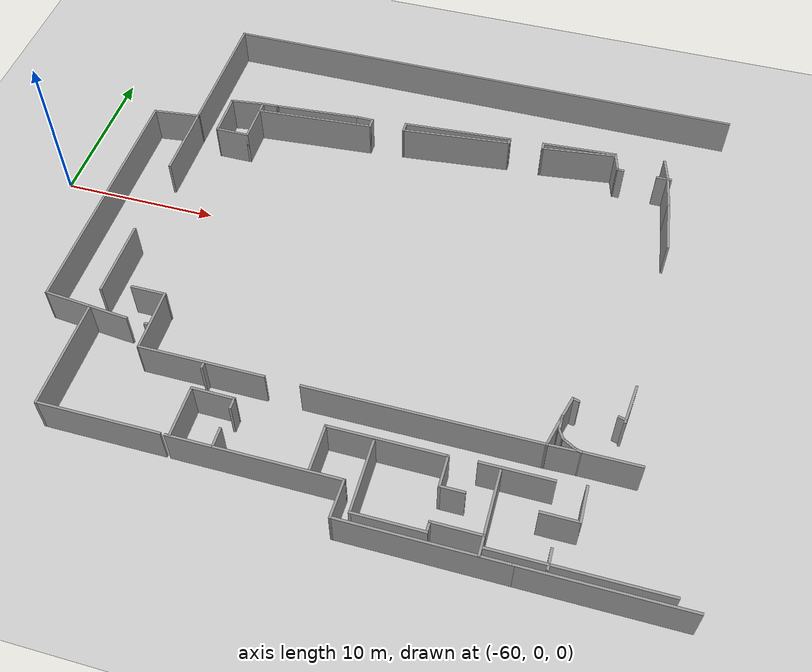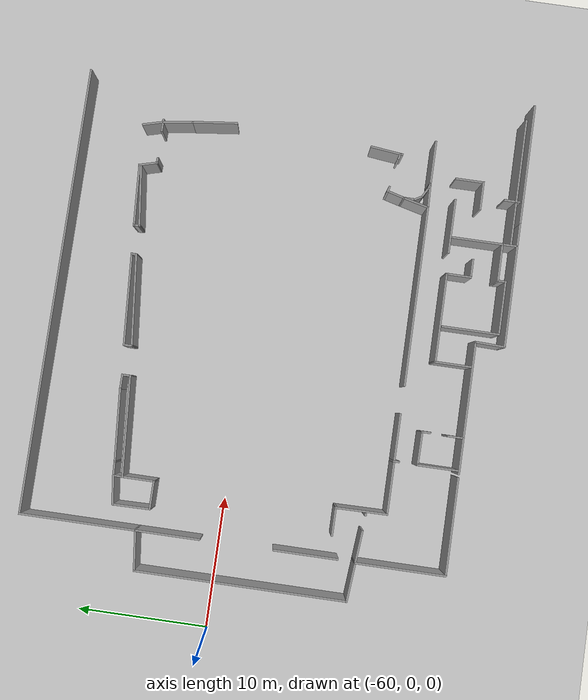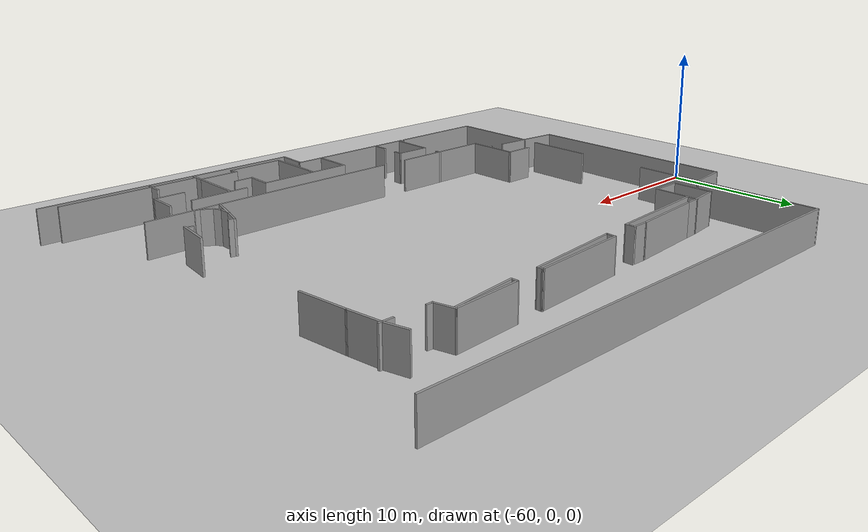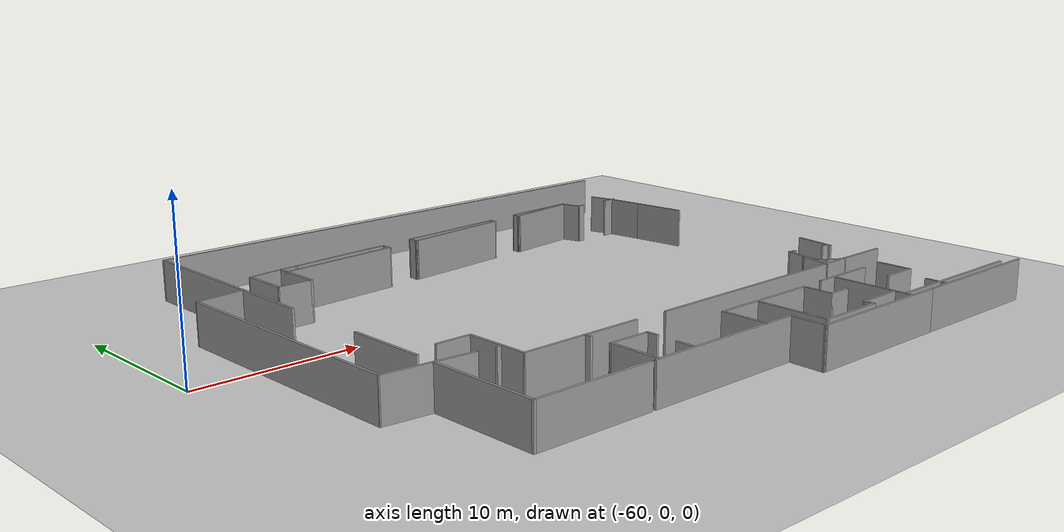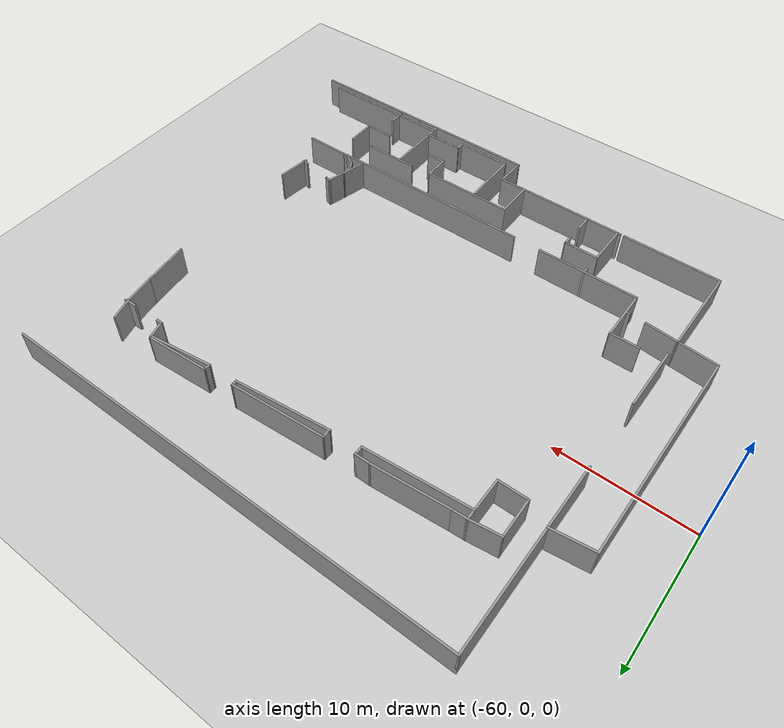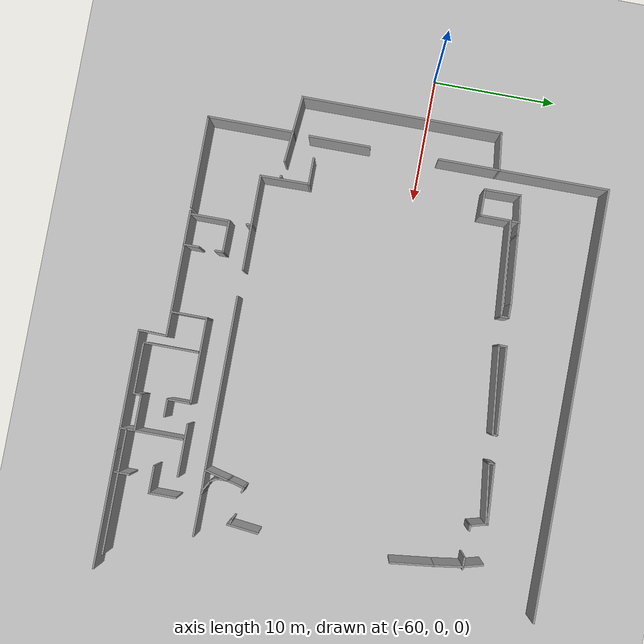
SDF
<sdf version="1.6">
 <world name="default">
  <model name="ground_plane">
   <static>1</static>
   <link name="link">
    <collision name="collision">
     <geometry><plane><normal>0 0 1</normal><size>100 100</size></plane></geometry>
     <surface>
      <contact><collide_bitmask>65535</collide_bitmask></contact>
      <friction><ode><mu>100</mu><mu2>50</mu2></ode></friction>
     </surface>
    </collision>
    <visual name="visual">
     <cast_shadows>0</cast_shadows>
     <geometry><plane><normal>0 0 1</normal><size>100 100</size></plane></geometry>
     <material>
      <script><uri>file://media/materials/scripts/gazebo.material</uri><name>Gazebo/Grey</name></script>
     </material>
    </visual>
   </link>
  </model>
  <model name="L8_1st">
   <pose>-0.728485 -0.360932 0 0 -0 0</pose>
   <link name="Wall_0">
    <collision name="Wall_0_Collision">
     <geometry><box><size>34.75 0.15 2.5</size></box></geometry>
     <pose>0 0 1.25 0 -0 0</pose>
    </collision>
    <visual name="Wall_0_Visual">
     <pose>0 0 1.25 0 -0 0</pose>
     <geometry><box><size>34.75 0.15 2.5</size></box></geometry>
     <material>
      <script><uri>file://media/materials/scripts/gazebo.material</uri><name>Gazebo/Grey</name></script>
      <ambient>1 1 1 1</ambient>
     </material>
     <meta><layer>0</layer></meta>
    </visual>
    <pose>-35.0099 15.4434 0 0 -0 0</pose>
   </link>
   <link name="Wall_100">
    <collision name="Wall_100_Collision">
     <geometry><box><size>1 0.15 2.5</size></box></geometry>
     <pose>0 0 1.25 0 -0 0</pose>
    </collision>
    <visual name="Wall_100_Visual">
     <pose>0 0 1.25 0 -0 0</pose>
     <geometry><box><size>1 0.15 2.5</size></box></geometry>
     <material>
      <script><uri>file://media/materials/scripts/gazebo.material</uri><name>Gazebo/Grey</name></script>
      <ambient>1 1 1 1</ambient>
     </material>
     <meta><layer>0</layer></meta>
    </visual>
    <pose>-21.2402 9.25126 0 0 -0 0</pose>
   </link>
   <link name="Wall_102">
    <collision name="Wall_102_Collision">
     <geometry><box><size>1.75 0.15 2.5</size></box></geometry>
     <pose>0 0 1.25 0 -0 0</pose>
    </collision>
    <visual name="Wall_102_Visual">
     <pose>0 0 1.25 0 -0 0</pose>
     <geometry><box><size>1.75 0.15 2.5</size></box></geometry>
     <material>
      <script><uri>file://media/materials/scripts/gazebo.material</uri><name>Gazebo/Grey</name></script>
      <ambient>1 1 1 1</ambient>
     </material>
     <meta><layer>0</layer></meta>
    </visual>
    <pose>-21.1857 9.99059 0 0 -0 -1.309</pose>
   </link>
   <link name="Wall_104">
    <collision name="Wall_104_Collision">
     <geometry><box><size>2.42038 0.15 2.5</size></box></geometry>
     <pose>0 0 1.25 0 -0 0</pose>
    </collision>
    <visual name="Wall_104_Visual">
     <pose>0 0 1.25 0 -0 0</pose>
     <geometry><box><size>2.42038 0.15 2.5</size></box></geometry>
     <material>
      <script><uri>file://media/materials/scripts/gazebo.material</uri><name>Gazebo/Grey</name></script>
      <ambient>1 1 1 1</ambient>
     </material>
     <meta><layer>0</layer></meta>
    </visual>
    <pose>-20.8186 8.094 0 0 -0 1.71224</pose>
   </link>
   <link name="Wall_106">
    <collision name="Wall_106_Collision">
     <geometry><box><size>3.56872 0.15 2.5</size></box></geometry>
     <pose>0 0 1.25 0 -0 0</pose>
    </collision>
    <visual name="Wall_106_Visual">
     <pose>0 0 1.25 0 -0 0</pose>
     <geometry><box><size>3.56872 0.15 2.5</size></box></geometry>
     <material>
      <script><uri>file://media/materials/scripts/gazebo.material</uri><name>Gazebo/Grey</name></script>
      <ambient>1 1 1 1</ambient>
     </material>
     <meta><layer>0</layer></meta>
    </visual>
    <pose>-20.4597 5.27239 0 0 -0 1.68738</pose>
   </link>
   <link name="Wall_114">
    <collision name="Wall_114_Collision">
     <geometry><box><size>2.58591 0.15 2.5</size></box></geometry>
     <pose>0 0 1.25 0 -0 0</pose>
    </collision>
    <visual name="Wall_114_Visual">
     <pose>0 0 1.25 0 -0 0</pose>
     <geometry><box><size>2.58591 0.15 2.5</size></box></geometry>
     <material>
      <script><uri>file://media/materials/scripts/gazebo.material</uri><name>Gazebo/Grey</name></script>
      <ambient>1 1 1 1</ambient>
     </material>
     <meta><layer>0</layer></meta>
    </visual>
    <pose>-20.7635 -8.28115 0 0 -0 1.45924</pose>
   </link>
   <link name="Wall_118">
    <collision name="Wall_118_Collision">
     <geometry><box><size>0.5 0.15 2.5</size></box></geometry>
     <pose>0 0 1.25 0 -0 0</pose>
    </collision>
    <visual name="Wall_118_Visual">
     <pose>0 0 1.25 0 -0 0</pose>
     <geometry><box><size>0.5 0.15 2.5</size></box></geometry>
     <material>
      <script><uri>file://media/materials/scripts/gazebo.material</uri><name>Gazebo/Grey</name></script>
      <ambient>1 1 1 1</ambient>
     </material>
     <meta><layer>0</layer></meta>
    </visual>
    <pose>-21.0984 -9.30152 0 0 -0 -0.261799</pose>
   </link>
   <link name="Wall_120">
    <collision name="Wall_120_Collision">
     <geometry><box><size>0.5 0.15 2.5</size></box></geometry>
     <pose>0 0 1.25 0 -0 0</pose>
    </collision>
    <visual name="Wall_120_Visual">
     <pose>0 0 1.25 0 -0 0</pose>
     <geometry><box><size>0.5 0.15 2.5</size></box></geometry>
     <material>
      <script><uri>file://media/materials/scripts/gazebo.material</uri><name>Gazebo/Grey</name></script>
      <ambient>1 1 1 1</ambient>
     </material>
     <meta><layer>0</layer></meta>
    </visual>
    <pose>-23.7509 -8.81418 0 0 -0 2.87979</pose>
   </link>
   <link name="Wall_121">
    <collision name="Wall_121_Collision">
     <geometry><box><size>1.5 0.15 2.5</size></box></geometry>
     <pose>0 0 1.25 0 -0 0</pose>
    </collision>
    <visual name="Wall_121_Visual">
     <pose>0 0 1.25 0 -0 0</pose>
     <geometry><box><size>1.5 0.15 2.5</size></box></geometry>
     <material>
      <script><uri>file://media/materials/scripts/gazebo.material</uri><name>Gazebo/Grey</name></script>
      <ambient>1 1 1 1</ambient>
     </material>
     <meta><layer>0</layer></meta>
    </visual>
    <pose>-24.0946 -9.42089 0 0 -0 -1.8326</pose>
   </link>
   <link name="Wall_123">
    <collision name="Wall_123_Collision">
     <geometry><box><size>1 0.15 2.5</size></box></geometry>
     <pose>0 0 1.25 0 -0 0</pose>
    </collision>
    <visual name="Wall_123_Visual">
     <pose>0 0 1.25 0 -0 0</pose>
     <geometry><box><size>1 0.15 2.5</size></box></geometry>
     <material>
      <script><uri>file://media/materials/scripts/gazebo.material</uri><name>Gazebo/Grey</name></script>
      <ambient>1 1 1 1</ambient>
     </material>
     <meta><layer>0</layer></meta>
    </visual>
    <pose>-24.2693 -10.4979 0 0 -0 -1.5708</pose>
   </link>
   <link name="Wall_124">
    <collision name="Wall_124_Collision">
     <geometry><box><size>0.75 0.15 2.5</size></box></geometry>
     <pose>0 0 1.25 0 -0 0</pose>
    </collision>
    <visual name="Wall_124_Visual">
     <pose>0 0 1.25 0 -0 0</pose>
     <geometry><box><size>0.75 0.15 2.5</size></box></geometry>
     <material>
      <script><uri>file://media/materials/scripts/gazebo.material</uri><name>Gazebo/Grey</name></script>
      <ambient>1 1 1 1</ambient>
     </material>
     <meta><layer>0</layer></meta>
    </visual>
    <pose>-24.1193 -11.1827 0 0 -0 -1.0472</pose>
   </link>
   <link name="Wall_125">
    <collision name="Wall_125_Collision">
     <geometry><box><size>1 0.15 2.5</size></box></geometry>
     <pose>0 0 1.25 0 -0 0</pose>
    </collision>
    <visual name="Wall_125_Visual">
     <pose>0 0 1.25 0 -0 0</pose>
     <geometry><box><size>1 0.15 2.5</size></box></geometry>
     <material>
      <script><uri>file://media/materials/scripts/gazebo.material</uri><name>Gazebo/Grey</name></script>
      <ambient>1 1 1 1</ambient>
     </material>
     <meta><layer>0</layer></meta>
    </visual>
    <pose>-23.6012 -11.655 0 0 -0 -0.523599</pose>
   </link>
   <link name="Wall_126">
    <collision name="Wall_126_Collision">
     <geometry><box><size>0.5 0.15 2.5</size></box></geometry>
     <pose>0 0 1.25 0 -0 0</pose>
    </collision>
    <visual name="Wall_126_Visual">
     <pose>0 0 1.25 0 -0 0</pose>
     <geometry><box><size>0.5 0.15 2.5</size></box></geometry>
     <material>
      <script><uri>file://media/materials/scripts/gazebo.material</uri><name>Gazebo/Grey</name></script>
      <ambient>1 1 1 1</ambient>
     </material>
     <meta><layer>0</layer></meta>
    </visual>
    <pose>-23.0641 -11.9128 0 0 -0 -0.261799</pose>
   </link>
   <link name="Wall_127">
    <collision name="Wall_127_Collision">
     <geometry><box><size>3.5 0.15 2.5</size></box></geometry>
     <pose>0 0 1.25 0 -0 0</pose>
    </collision>
    <visual name="Wall_127_Visual">
     <pose>0 0 1.25 0 -0 0</pose>
     <geometry><box><size>3.5 0.15 2.5</size></box></geometry>
     <material>
      <script><uri>file://media/materials/scripts/gazebo.material</uri><name>Gazebo/Grey</name></script>
      <ambient>1 1 1 1</ambient>
     </material>
     <meta><layer>0</layer></meta>
    </visual>
    <pose>-21.2201 -11.9581 0 0 -0 0</pose>
   </link>
   <link name="Wall_129">
    <collision name="Wall_129_Collision">
     <geometry><box><size>2.14193 0.15 2.5</size></box></geometry>
     <pose>0 0 1.25 0 -0 0</pose>
    </collision>
    <visual name="Wall_129_Visual">
     <pose>0 0 1.25 0 -0 0</pose>
     <geometry><box><size>2.14193 0.15 2.5</size></box></geometry>
     <material>
      <script><uri>file://media/materials/scripts/gazebo.material</uri><name>Gazebo/Grey</name></script>
      <ambient>1 1 1 1</ambient>
     </material>
     <meta><layer>0</layer></meta>
    </visual>
    <pose>-24.5075 -11.04 0 0 -0 1.32933</pose>
   </link>
   <link name="Wall_131">
    <collision name="Wall_131_Collision">
     <geometry><box><size>2.00116 0.15 2.5</size></box></geometry>
     <pose>0 0 1.25 0 -0 0</pose>
    </collision>
    <visual name="Wall_131_Visual">
     <pose>0 0 1.25 0 -0 0</pose>
     <geometry><box><size>2.00116 0.15 2.5</size></box></geometry>
     <material>
      <script><uri>file://media/materials/scripts/gazebo.material</uri><name>Gazebo/Grey</name></script>
      <ambient>1 1 1 1</ambient>
     </material>
     <meta><layer>0</layer></meta>
    </visual>
    <pose>-23.8204 -11.9826 0 0 -0 0.026438</pose>
   </link>
   <link name="Wall_133">
    <collision name="Wall_133_Collision">
     <geometry><box><size>14.0279 0.15 2.5</size></box></geometry>
     <pose>0 0 1.25 0 -0 0</pose>
    </collision>
    <visual name="Wall_133_Visual">
     <pose>0 0 1.25 0 -0 0</pose>
     <geometry><box><size>14.0279 0.15 2.5</size></box></geometry>
     <material>
      <script><uri>file://media/materials/scripts/gazebo.material</uri><name>Gazebo/Grey</name></script>
      <ambient>1 1 1 1</ambient>
     </material>
     <meta><layer>0</layer></meta>
    </visual>
    <pose>-31.6846 -12.0193 0 0 -0 0.001774</pose>
   </link>
   <link name="Wall_135">
    <collision name="Wall_135_Collision">
     <geometry><box><size>7.75 0.15 2.5</size></box></geometry>
     <pose>0 0 1.25 0 -0 0</pose>
    </collision>
    <visual name="Wall_135_Visual">
     <pose>0 0 1.25 0 -0 0</pose>
     <geometry><box><size>7.75 0.15 2.5</size></box></geometry>
     <material>
      <script><uri>file://media/materials/scripts/gazebo.material</uri><name>Gazebo/Grey</name></script>
      <ambient>1 1 1 1</ambient>
     </material>
     <meta><layer>0</layer></meta>
    </visual>
    <pose>-44.6466 -12.0076 0 0 -0 3.14159</pose>
   </link>
   <link name="Wall_137">
    <collision name="Wall_137_Collision">
     <geometry><box><size>2.25 0.15 2.5</size></box></geometry>
     <pose>0 0 1.25 0 -0 0</pose>
    </collision>
    <visual name="Wall_137_Visual">
     <pose>0 0 1.25 0 -0 0</pose>
     <geometry><box><size>2.25 0.15 2.5</size></box></geometry>
     <material>
      <script><uri>file://media/materials/scripts/gazebo.material</uri><name>Gazebo/Grey</name></script>
      <ambient>1 1 1 1</ambient>
     </material>
     <meta><layer>0</layer></meta>
    </visual>
    <pose>-49.527 -8.11198 0 0 -0 0</pose>
   </link>
   <link name="Wall_138">
    <collision name="Wall_138_Collision">
     <geometry><box><size>4.04566 0.15 2.5</size></box></geometry>
     <pose>0 0 1.25 0 -0 0</pose>
    </collision>
    <visual name="Wall_138_Visual">
     <pose>0 0 1.25 0 -0 0</pose>
     <geometry><box><size>4.04566 0.15 2.5</size></box></geometry>
     <material>
      <script><uri>file://media/materials/scripts/gazebo.material</uri><name>Gazebo/Grey</name></script>
      <ambient>1 1 1 1</ambient>
     </material>
     <meta><layer>0</layer></meta>
    </visual>
    <pose>-48.4694 -10.0598 0 0 -0 -1.55909</pose>
   </link>
   <link name="Wall_140">
    <collision name="Wall_140_Collision">
     <geometry><box><size>2.54872 0.15 2.5</size></box></geometry>
     <pose>0 0 1.25 0 -0 0</pose>
    </collision>
    <visual name="Wall_140_Visual">
     <pose>0 0 1.25 0 -0 0</pose>
     <geometry><box><size>2.54872 0.15 2.5</size></box></geometry>
     <material>
      <script><uri>file://media/materials/scripts/gazebo.material</uri><name>Gazebo/Grey</name></script>
      <ambient>1 1 1 1</ambient>
     </material>
     <meta><layer>0</layer></meta>
    </visual>
    <pose>-51.1714 -10.2292 0 0 -0 3.0523</pose>
   </link>
   <link name="Wall_142">
    <collision name="Wall_142_Collision">
     <geometry><box><size>0.25 0.15 2.5</size></box></geometry>
     <pose>0 0 1.25 0 -0 0</pose>
    </collision>
    <visual name="Wall_142_Visual">
     <pose>0 0 1.25 0 -0 0</pose>
     <geometry><box><size>0.25 0.15 2.5</size></box></geometry>
     <material>
      <script><uri>file://media/materials/scripts/gazebo.material</uri><name>Gazebo/Grey</name></script>
      <ambient>1 1 1 1</ambient>
     </material>
     <meta><layer>0</layer></meta>
    </visual>
    <pose>-48.6766 -10.4159 0 0 -0 0</pose>
   </link>
   <link name="Wall_144">
    <collision name="Wall_144_Collision">
     <geometry><box><size>0.5 0.15 2.5</size></box></geometry>
     <pose>0 0 1.25 0 -0 0</pose>
    </collision>
    <visual name="Wall_144_Visual">
     <pose>0 0 1.25 0 -0 0</pose>
     <geometry><box><size>0.5 0.15 2.5</size></box></geometry>
     <material>
      <script><uri>file://media/materials/scripts/gazebo.material</uri><name>Gazebo/Grey</name></script>
      <ambient>1 1 1 1</ambient>
     </material>
     <meta><layer>0</layer></meta>
    </visual>
    <pose>-44.4258 -12.1754 0 0 -0 -1.5708</pose>
   </link>
   <link name="Wall_146">
    <collision name="Wall_146_Collision">
     <geometry><box><size>0.75 0.15 2.5</size></box></geometry>
     <pose>0 0 1.25 0 -0 0</pose>
    </collision>
    <visual name="Wall_146_Visual">
     <pose>0 0 1.25 0 -0 0</pose>
     <geometry><box><size>0.75 0.15 2.5</size></box></geometry>
     <material>
      <script><uri>file://media/materials/scripts/gazebo.material</uri><name>Gazebo/Grey</name></script>
      <ambient>1 1 1 1</ambient>
     </material>
     <meta><layer>0</layer></meta>
    </visual>
    <pose>-41.9175 -14.1278 0 0 -0 1.5708</pose>
   </link>
   <link name="Wall_147">
    <collision name="Wall_147_Collision">
     <geometry><box><size>2.68428 0.15 2.5</size></box></geometry>
     <pose>0 0 1.25 0 -0 0</pose>
    </collision>
    <visual name="Wall_147_Visual">
     <pose>0 0 1.25 0 -0 0</pose>
     <geometry><box><size>2.68428 0.15 2.5</size></box></geometry>
     <material>
      <script><uri>file://media/materials/scripts/gazebo.material</uri><name>Gazebo/Grey</name></script>
      <ambient>1 1 1 1</ambient>
     </material>
     <meta><layer>0</layer></meta>
    </visual>
    <pose>-43.1843 -13.8125 0 0 -0 3.12952</pose>
   </link>
   <link name="Wall_148">
    <collision name="Wall_148_Collision">
     <geometry><box><size>3.25 0.15 2.5</size></box></geometry>
     <pose>0 0 1.25 0 -0 0</pose>
    </collision>
    <visual name="Wall_148_Visual">
     <pose>0 0 1.25 0 -0 0</pose>
     <geometry><box><size>3.25 0.15 2.5</size></box></geometry>
     <material>
      <script><uri>file://media/materials/scripts/gazebo.material</uri><name>Gazebo/Grey</name></script>
      <ambient>1 1 1 1</ambient>
     </material>
     <meta><layer>0</layer></meta>
    </visual>
    <pose>-44.4511 -15.3778 0 0 -0 -1.5708</pose>
   </link>
   <link name="Wall_150">
    <collision name="Wall_150_Collision">
     <geometry><box><size>1.25 0.15 2.5</size></box></geometry>
     <pose>0 0 1.25 0 -0 0</pose>
    </collision>
    <visual name="Wall_150_Visual">
     <pose>0 0 1.25 0 -0 0</pose>
     <geometry><box><size>1.25 0.15 2.5</size></box></geometry>
     <material>
      <script><uri>file://media/materials/scripts/gazebo.material</uri><name>Gazebo/Grey</name></script>
      <ambient>1 1 1 1</ambient>
     </material>
     <meta><layer>0</layer></meta>
    </visual>
    <pose>-41.9639 -16.3838 0 0 -0 -1.5708</pose>
   </link>
   <link name="Wall_152">
    <collision name="Wall_152_Collision">
     <geometry><box><size>3 0.15 2.5</size></box></geometry>
     <pose>0 0 1.25 0 -0 0</pose>
    </collision>
    <visual name="Wall_152_Visual">
     <pose>0 0 1.25 0 -0 0</pose>
     <geometry><box><size>3 0.15 2.5</size></box></geometry>
     <material>
      <script><uri>file://media/materials/scripts/gazebo.material</uri><name>Gazebo/Grey</name></script>
      <ambient>1 1 1 1</ambient>
     </material>
     <meta><layer>0</layer></meta>
    </visual>
    <pose>-36.5188 -15.5406 0 0 -0 1.5708</pose>
   </link>
   <link name="Wall_153">
    <collision name="Wall_153_Collision">
     <geometry><box><size>7 0.15 2.5</size></box></geometry>
     <pose>0 0 1.25 0 -0 0</pose>
    </collision>
    <visual name="Wall_153_Visual">
     <pose>0 0 1.25 0 -0 0</pose>
     <geometry><box><size>7 0.15 2.5</size></box></geometry>
     <material>
      <script><uri>file://media/materials/scripts/gazebo.material</uri><name>Gazebo/Grey</name></script>
      <ambient>1 1 1 1</ambient>
     </material>
     <meta><layer>0</layer></meta>
    </visual>
    <pose>-33.0938 -14.1156 0 0 -0 0</pose>
   </link>
   <link name="Wall_154">
    <collision name="Wall_154_Collision">
     <geometry><box><size>2 0.15 2.5</size></box></geometry>
     <pose>0 0 1.25 0 -0 0</pose>
    </collision>
    <visual name="Wall_154_Visual">
     <pose>0 0 1.25 0 -0 0</pose>
     <geometry><box><size>2 0.15 2.5</size></box></geometry>
     <material>
      <script><uri>file://media/materials/scripts/gazebo.material</uri><name>Gazebo/Grey</name></script>
      <ambient>1 1 1 1</ambient>
     </material>
     <meta><layer>0</layer></meta>
    </visual>
    <pose>-29.6688 -15.0406 0 0 -0 -1.5708</pose>
   </link>
   <link name="Wall_155">
    <collision name="Wall_155_Collision">
     <geometry><box><size>1.5 0.15 2.5</size></box></geometry>
     <pose>0 0 1.25 0 -0 0</pose>
    </collision>
    <visual name="Wall_155_Visual">
     <pose>0 0 1.25 0 -0 0</pose>
     <geometry><box><size>1.5 0.15 2.5</size></box></geometry>
     <material>
      <script><uri>file://media/materials/scripts/gazebo.material</uri><name>Gazebo/Grey</name></script>
      <ambient>1 1 1 1</ambient>
     </material>
     <meta><layer>0</layer></meta>
    </visual>
    <pose>-28.9938 -15.9656 0 0 -0 0</pose>
   </link>
   <link name="Wall_157">
    <collision name="Wall_157_Collision">
     <geometry><box><size>4.25 0.15 2.5</size></box></geometry>
     <pose>0 0 1.25 0 -0 0</pose>
    </collision>
    <visual name="Wall_157_Visual">
     <pose>0 0 1.25 0 -0 0</pose>
     <geometry><box><size>4.25 0.15 2.5</size></box></geometry>
     <material>
      <script><uri>file://media/materials/scripts/gazebo.material</uri><name>Gazebo/Grey</name></script>
      <ambient>1 1 1 1</ambient>
     </material>
     <meta><layer>0</layer></meta>
    </visual>
    <pose>-25.9341 -14.0289 0 0 -0 0</pose>
   </link>
   <link name="Wall_159">
    <collision name="Wall_159_Collision">
     <geometry><box><size>4 0.15 2.5</size></box></geometry>
     <pose>0 0 1.25 0 -0 0</pose>
    </collision>
    <visual name="Wall_159_Visual">
     <pose>0 0 1.25 0 -0 0</pose>
     <geometry><box><size>4 0.15 2.5</size></box></geometry>
     <material>
      <script><uri>file://media/materials/scripts/gazebo.material</uri><name>Gazebo/Grey</name></script>
      <ambient>1 1 1 1</ambient>
     </material>
     <meta><layer>0</layer></meta>
    </visual>
    <pose>-26.7911 -16.1375 0 0 -0 -1.5708</pose>
   </link>
   <link name="Wall_160">
    <collision name="Wall_160_Collision">
     <geometry><box><size>3 0.15 2.5</size></box></geometry>
     <pose>0 0 1.25 0 -0 0</pose>
    </collision>
    <visual name="Wall_160_Visual">
     <pose>0 0 1.25 0 -0 0</pose>
     <geometry><box><size>3 0.15 2.5</size></box></geometry>
     <material>
      <script><uri>file://media/materials/scripts/gazebo.material</uri><name>Gazebo/Grey</name></script>
      <ambient>1 1 1 1</ambient>
     </material>
     <meta><layer>0</layer></meta>
    </visual>
    <pose>-28.2161 -18.0625 0 0 -0 3.14159</pose>
   </link>
   <link name="Wall_161">
    <collision name="Wall_161_Collision">
     <geometry><box><size>0.75 0.15 2.5</size></box></geometry>
     <pose>0 0 1.25 0 -0 0</pose>
    </collision>
    <visual name="Wall_161_Visual">
     <pose>0 0 1.25 0 -0 0</pose>
     <geometry><box><size>0.75 0.15 2.5</size></box></geometry>
     <material>
      <script><uri>file://media/materials/scripts/gazebo.material</uri><name>Gazebo/Grey</name></script>
      <ambient>1 1 1 1</ambient>
     </material>
     <meta><layer>0</layer></meta>
    </visual>
    <pose>-29.6411 -18.3625 0 0 -0 -1.5708</pose>
   </link>
   <link name="Wall_162">
    <collision name="Wall_162_Collision">
     <geometry><box><size>4.25 0.15 2.5</size></box></geometry>
     <pose>0 0 1.25 0 -0 0</pose>
    </collision>
    <visual name="Wall_162_Visual">
     <pose>0 0 1.25 0 -0 0</pose>
     <geometry><box><size>4.25 0.15 2.5</size></box></geometry>
     <material>
      <script><uri>file://media/materials/scripts/gazebo.material</uri><name>Gazebo/Grey</name></script>
      <ambient>1 1 1 1</ambient>
     </material>
     <meta><layer>0</layer></meta>
    </visual>
    <pose>-31.6911 -18.6625 0 0 -0 3.14159</pose>
   </link>
   <link name="Wall_163">
    <collision name="Wall_163_Collision">
     <geometry><box><size>4.5 0.15 2.5</size></box></geometry>
     <pose>0 0 1.25 0 -0 0</pose>
    </collision>
    <visual name="Wall_163_Visual">
     <pose>0 0 1.25 0 -0 0</pose>
     <geometry><box><size>4.5 0.15 2.5</size></box></geometry>
     <material>
      <script><uri>file://media/materials/scripts/gazebo.material</uri><name>Gazebo/Grey</name></script>
      <ambient>1 1 1 1</ambient>
     </material>
     <meta><layer>0</layer></meta>
    </visual>
    <pose>-33.7411 -16.4875 0 0 -0 1.5708</pose>
   </link>
   <link name="Wall_167">
    <collision name="Wall_167_Collision">
     <geometry><box><size>2.25 0.15 2.5</size></box></geometry>
     <pose>0 0 1.25 0 -0 0</pose>
    </collision>
    <visual name="Wall_167_Visual">
     <pose>0 0 1.25 0 -0 0</pose>
     <geometry><box><size>2.25 0.15 2.5</size></box></geometry>
     <material>
      <script><uri>file://media/materials/scripts/gazebo.material</uri><name>Gazebo/Grey</name></script>
      <ambient>1 1 1 1</ambient>
     </material>
     <meta><layer>0</layer></meta>
    </visual>
    <pose>-22.1993 -14.9606 0 0 -0 -1.5708</pose>
   </link>
   <link name="Wall_168">
    <collision name="Wall_168_Collision">
     <geometry><box><size>2.25 0.15 2.5</size></box></geometry>
     <pose>0 0 1.25 0 -0 0</pose>
    </collision>
    <visual name="Wall_168_Visual">
     <pose>0 0 1.25 0 -0 0</pose>
     <geometry><box><size>2.25 0.15 2.5</size></box></geometry>
     <material>
      <script><uri>file://media/materials/scripts/gazebo.material</uri><name>Gazebo/Grey</name></script>
      <ambient>1 1 1 1</ambient>
     </material>
     <meta><layer>0</layer></meta>
    </visual>
    <pose>-23.2493 -16.0106 0 0 -0 3.14159</pose>
   </link>
   <link name="Wall_172">
    <collision name="Wall_172_Collision">
     <geometry><box><size>1.25 0.15 2.5</size></box></geometry>
     <pose>0 0 1.25 0 -0 0</pose>
    </collision>
    <visual name="Wall_172_Visual">
     <pose>0 0 1.25 0 -0 0</pose>
     <geometry><box><size>1.25 0.15 2.5</size></box></geometry>
     <material>
      <script><uri>file://media/materials/scripts/gazebo.material</uri><name>Gazebo/Grey</name></script>
      <ambient>1 1 1 1</ambient>
     </material>
     <meta><layer>0</layer></meta>
    </visual>
    <pose>-23.3344 -18.4027 0 0 -0 -1.5708</pose>
   </link>
   <link name="Wall_174">
    <collision name="Wall_174_Collision">
     <geometry><box><size>1.25 0.15 2.5</size></box></geometry>
     <pose>0 0 1.25 0 -0 0</pose>
    </collision>
    <visual name="Wall_174_Visual">
     <pose>0 0 1.25 0 -0 0</pose>
     <geometry><box><size>1.25 0.15 2.5</size></box></geometry>
     <material>
      <script><uri>file://media/materials/scripts/gazebo.material</uri><name>Gazebo/Grey</name></script>
      <ambient>1 1 1 1</ambient>
     </material>
     <meta><layer>0</layer></meta>
    </visual>
    <pose>-26.7911 -18.6125 0 0 -0 -1.5708</pose>
   </link>
   <link name="Wall_176">
    <collision name="Wall_176_Collision">
     <geometry><box><size>10 0.15 2.5</size></box></geometry>
     <pose>0 0 1.25 0 -0 0</pose>
    </collision>
    <visual name="Wall_176_Visual">
     <pose>0 0 1.25 0 -0 0</pose>
     <geometry><box><size>10 0.15 2.5</size></box></geometry>
     <material>
      <script><uri>file://media/materials/scripts/gazebo.material</uri><name>Gazebo/Grey</name></script>
      <ambient>1 1 1 1</ambient>
     </material>
     <meta><layer>0</layer></meta>
    </visual>
    <pose>-21.8049 -18.7092 0 0 -0 0</pose>
   </link>
   <link name="Wall_417">
    <collision name="Wall_417_Collision">
     <geometry><box><size>5 0.15 2.5</size></box></geometry>
     <pose>0 0 1.25 0 -0 0</pose>
    </collision>
    <visual name="Wall_417_Visual">
     <pose>0 0 1.25 0 -0 0</pose>
     <geometry><box><size>5 0.15 2.5</size></box></geometry>
     <material>
      <script><uri>file://media/materials/scripts/gazebo.material</uri><name>Gazebo/Grey</name></script>
      <ambient>1 1 1 1</ambient>
     </material>
     <meta><layer>0</layer></meta>
    </visual>
    <pose>-52.3099 4.16841 0 0 -0 1.5708</pose>
   </link>
   <link name="Wall_419">
    <collision name="Wall_419_Collision">
     <geometry><box><size>5 0.15 2.5</size></box></geometry>
     <pose>0 0 1.25 0 -0 0</pose>
    </collision>
    <visual name="Wall_419_Visual">
     <pose>0 0 1.25 0 -0 0</pose>
     <geometry><box><size>5 0.15 2.5</size></box></geometry>
     <material>
      <script><uri>file://media/materials/scripts/gazebo.material</uri><name>Gazebo/Grey</name></script>
      <ambient>1 1 1 1</ambient>
     </material>
     <meta><layer>0</layer></meta>
    </visual>
    <pose>-52.2886 -6.33 0 0 -0 -1.5708</pose>
   </link>
   <link name="Wall_42">
    <collision name="Wall_42_Collision">
     <geometry><box><size>9.5 0.15 2.5</size></box></geometry>
     <pose>0 0 1.25 0 -0 0</pose>
    </collision>
    <visual name="Wall_42_Visual">
     <pose>0 0 1.25 0 -0 0</pose>
     <geometry><box><size>9.5 0.15 2.5</size></box></geometry>
     <material>
      <script><uri>file://media/materials/scripts/gazebo.material</uri><name>Gazebo/Grey</name></script>
      <ambient>1 1 1 1</ambient>
     </material>
     <meta><layer>0</layer></meta>
    </visual>
    <pose>-20.3546 -19.2025 0 0 -0 3.14159</pose>
   </link>
   <link name="Wall_44">
    <collision name="Wall_44_Collision">
     <geometry><box><size>9.75 0.15 2.5</size></box></geometry>
     <pose>0 0 1.25 0 -0 0</pose>
    </collision>
    <visual name="Wall_44_Visual">
     <pose>0 0 1.25 0 -0 0</pose>
     <geometry><box><size>9.75 0.15 2.5</size></box></geometry>
     <material>
      <script><uri>file://media/materials/scripts/gazebo.material</uri><name>Gazebo/Grey</name></script>
      <ambient>1 1 1 1</ambient>
     </material>
     <meta><layer>0</layer></meta>
    </visual>
    <pose>-29.8296 -19.2025 0 0 -0 3.14159</pose>
   </link>
   <link name="Wall_45">
    <collision name="Wall_45_Collision">
     <geometry><box><size>2.34875 0.15 2.5</size></box></geometry>
     <pose>0 0 1.25 0 -0 0</pose>
    </collision>
    <visual name="Wall_45_Visual">
     <pose>0 0 1.25 0 -0 0</pose>
     <geometry><box><size>2.34875 0.15 2.5</size></box></geometry>
     <material>
      <script><uri>file://media/materials/scripts/gazebo.material</uri><name>Gazebo/Grey</name></script>
      <ambient>1 1 1 1</ambient>
     </material>
     <meta><layer>0</layer></meta>
    </visual>
    <pose>-34.5992 -18.1036 0 0 -0 1.54313</pose>
   </link>
   <link name="Wall_46">
    <collision name="Wall_46_Collision">
     <geometry><box><size>10.25 0.15 2.5</size></box></geometry>
     <pose>0 0 1.25 0 -0 0</pose>
    </collision>
    <visual name="Wall_46_Visual">
     <pose>0 0 1.25 0 -0 0</pose>
     <geometry><box><size>10.25 0.15 2.5</size></box></geometry>
     <material>
      <script><uri>file://media/materials/scripts/gazebo.material</uri><name>Gazebo/Grey</name></script>
      <ambient>1 1 1 1</ambient>
     </material>
     <meta><layer>0</layer></meta>
    </visual>
    <pose>-39.6188 -16.9742 0 0 -0 3.14159</pose>
   </link>
   <link name="Wall_48">
    <collision name="Wall_48_Collision">
     <geometry><box><size>7.5 0.15 2.5</size></box></geometry>
     <pose>0 0 1.25 0 -0 0</pose>
    </collision>
    <visual name="Wall_48_Visual">
     <pose>0 0 1.25 0 -0 0</pose>
     <geometry><box><size>7.5 0.15 2.5</size></box></geometry>
     <material>
      <script><uri>file://media/materials/scripts/gazebo.material</uri><name>Gazebo/Grey</name></script>
      <ambient>1 1 1 1</ambient>
     </material>
     <meta><layer>0</layer></meta>
    </visual>
    <pose>-48.691 -16.9722 0 0 -0 3.14159</pose>
   </link>
   <link name="Wall_49">
    <collision name="Wall_49_Collision">
     <geometry><box><size>7 0.15 2.5</size></box></geometry>
     <pose>0 0 1.25 0 -0 0</pose>
    </collision>
    <visual name="Wall_49_Visual">
     <pose>0 0 1.25 0 -0 0</pose>
     <geometry><box><size>7 0.15 2.5</size></box></geometry>
     <material>
      <script><uri>file://media/materials/scripts/gazebo.material</uri><name>Gazebo/Grey</name></script>
      <ambient>1 1 1 1</ambient>
     </material>
     <meta><layer>0</layer></meta>
    </visual>
    <pose>-52.366 -13.5472 0 0 -0 1.5708</pose>
   </link>
   <link name="Wall_51">
    <collision name="Wall_51_Collision">
     <geometry><box><size>16.25 0.15 2.5</size></box></geometry>
     <pose>0 0 1.25 0 -0 0</pose>
    </collision>
    <visual name="Wall_51_Visual">
     <pose>0 0 1.25 0 -0 0</pose>
     <geometry><box><size>16.25 0.15 2.5</size></box></geometry>
     <material>
      <script><uri>file://media/materials/scripts/gazebo.material</uri><name>Gazebo/Grey</name></script>
      <ambient>1 1 1 1</ambient>
     </material>
     <meta><layer>0</layer></meta>
    </visual>
    <pose>-55.2786 -1.81311 0 0 -0 -1.5708</pose>
   </link>
   <link name="Wall_53">
    <collision name="Wall_53_Collision">
     <geometry><box><size>3.07413 0.15 2.5</size></box></geometry>
     <pose>0 0 1.25 0 -0 0</pose>
    </collision>
    <visual name="Wall_53_Visual">
     <pose>0 0 1.25 0 -0 0</pose>
     <geometry><box><size>3.07413 0.15 2.5</size></box></geometry>
     <material>
      <script><uri>file://media/materials/scripts/gazebo.material</uri><name>Gazebo/Grey</name></script>
      <ambient>1 1 1 1</ambient>
     </material>
     <meta><layer>0</layer></meta>
    </visual>
    <pose>-53.8223 -9.99267 0 0 -0 -0.088732</pose>
   </link>
   <link name="Wall_55">
    <collision name="Wall_55_Collision">
     <geometry><box><size>9 0.15 2.5</size></box></geometry>
     <pose>0 0 1.25 0 -0 0</pose>
    </collision>
    <visual name="Wall_55_Visual">
     <pose>0 0 1.25 0 -0 0</pose>
     <geometry><box><size>9 0.15 2.5</size></box></geometry>
     <material>
      <script><uri>file://media/materials/scripts/gazebo.material</uri><name>Gazebo/Grey</name></script>
      <ambient>1 1 1 1</ambient>
     </material>
     <meta><layer>0</layer></meta>
    </visual>
    <pose>-52.3099 11.0184 0 0 -0 -1.5708</pose>
   </link>
   <link name="Wall_57">
    <collision name="Wall_57_Collision">
     <geometry><box><size>3.14003 0.15 2.5</size></box></geometry>
     <pose>0 0 1.25 0 -0 0</pose>
    </collision>
    <visual name="Wall_57_Visual">
     <pose>0 0 1.25 0 -0 0</pose>
     <geometry><box><size>3.14003 0.15 2.5</size></box></geometry>
     <material>
      <script><uri>file://media/materials/scripts/gazebo.material</uri><name>Gazebo/Grey</name></script>
      <ambient>1 1 1 1</ambient>
     </material>
     <meta><layer>0</layer></meta>
    </visual>
    <pose>-53.7943 6.41515 0 0 -0 0.119518</pose>
   </link>
   <link name="Wall_59">
    <collision name="Wall_59_Collision">
     <geometry><box><size>2.98 0.15 2.5</size></box></geometry>
     <pose>0 0 1.25 0 -0 0</pose>
    </collision>
    <visual name="Wall_59_Visual">
     <pose>0 0 1.25 0 -0 0</pose>
     <geometry><box><size>2.98 0.15 2.5</size></box></geometry>
     <material>
      <script><uri>file://media/materials/scripts/gazebo.material</uri><name>Gazebo/Grey</name></script>
      <ambient>1 1 1 1</ambient>
     </material>
     <meta><layer>0</layer></meta>
    </visual>
    <pose>-50.604 7.18271 0 0 -0 -1.55666</pose>
   </link>
   <link name="Wall_60">
    <collision name="Wall_60_Collision">
     <geometry><box><size>2.25 0.15 2.5</size></box></geometry>
     <pose>0 0 1.25 0 -0 0</pose>
    </collision>
    <visual name="Wall_60_Visual">
     <pose>0 0 1.25 0 -0 0</pose>
     <geometry><box><size>2.25 0.15 2.5</size></box></geometry>
     <material>
      <script><uri>file://media/materials/scripts/gazebo.material</uri><name>Gazebo/Grey</name></script>
      <ambient>1 1 1 1</ambient>
     </material>
     <meta><layer>0</layer></meta>
    </visual>
    <pose>-49.534 5.76771 0 0 -0 0</pose>
   </link>
   <link name="Wall_61">
    <collision name="Wall_61_Collision">
     <geometry><box><size>3.25 0.15 2.5</size></box></geometry>
     <pose>0 0 1.25 0 -0 0</pose>
    </collision>
    <visual name="Wall_61_Visual">
     <pose>0 0 1.25 0 -0 0</pose>
     <geometry><box><size>3.25 0.15 2.5</size></box></geometry>
     <material>
      <script><uri>file://media/materials/scripts/gazebo.material</uri><name>Gazebo/Grey</name></script>
      <ambient>1 1 1 1</ambient>
     </material>
     <meta><layer>0</layer></meta>
    </visual>
    <pose>-48.484 7.31771 0 0 -0 1.5708</pose>
   </link>
   <link name="Wall_66">
    <collision name="Wall_66_Collision">
     <geometry><box><size>2.30696 0.15 2.5</size></box></geometry>
     <pose>0 0 1.25 0 -0 0</pose>
    </collision>
    <visual name="Wall_66_Visual">
     <pose>0 0 1.25 0 -0 0</pose>
     <geometry><box><size>2.30696 0.15 2.5</size></box></geometry>
     <material>
      <script><uri>file://media/materials/scripts/gazebo.material</uri><name>Gazebo/Grey</name></script>
      <ambient>1 1 1 1</ambient>
     </material>
     <meta><layer>0</layer></meta>
    </visual>
    <pose>-49.554 8.73271 0 0 -0 -3.01609</pose>
   </link>
   <link name="Wall_68">
    <collision name="Wall_68_Collision">
     <geometry><box><size>1.19644 0.15 2.5</size></box></geometry>
     <pose>0 0 1.25 0 -0 0</pose>
    </collision>
    <visual name="Wall_68_Visual">
     <pose>0 0 1.25 0 -0 0</pose>
     <geometry><box><size>1.19644 0.15 2.5</size></box></geometry>
     <material>
      <script><uri>file://media/materials/scripts/gazebo.material</uri><name>Gazebo/Grey</name></script>
      <ambient>1 1 1 1</ambient>
     </material>
     <meta><layer>0</layer></meta>
    </visual>
    <pose>-47.9614 8.89418 0 0 -0 -3.09098</pose>
   </link>
   <link name="Wall_70">
    <collision name="Wall_70_Collision">
     <geometry><box><size>1.25 0.15 2.5</size></box></geometry>
     <pose>0 0 1.25 0 -0 0</pose>
    </collision>
    <visual name="Wall_70_Visual">
     <pose>0 0 1.25 0 -0 0</pose>
     <geometry><box><size>1.25 0.15 2.5</size></box></geometry>
     <material>
      <script><uri>file://media/materials/scripts/gazebo.material</uri><name>Gazebo/Grey</name></script>
      <ambient>1 1 1 1</ambient>
     </material>
     <meta><layer>0</layer></meta>
    </visual>
    <pose>-41.4089 9.36065 0 0 -0 3.14159</pose>
   </link>
   <link name="Wall_72">
    <collision name="Wall_72_Collision">
     <geometry><box><size>5.64764 0.15 2.5</size></box></geometry>
     <pose>0 0 1.25 0 -0 0</pose>
    </collision>
    <visual name="Wall_72_Visual">
     <pose>0 0 1.25 0 -0 0</pose>
     <geometry><box><size>5.64764 0.15 2.5</size></box></geometry>
     <material>
      <script><uri>file://media/materials/scripts/gazebo.material</uri><name>Gazebo/Grey</name></script>
      <ambient>1 1 1 1</ambient>
     </material>
     <meta><layer>0</layer></meta>
    </visual>
    <pose>-44.6989 9.14065 0 0 -0 -3.06147</pose>
   </link>
   <link name="Wall_74">
    <collision name="Wall_74_Collision">
     <geometry><box><size>0.75 0.15 2.5</size></box></geometry>
     <pose>0 0 1.25 0 -0 0</pose>
    </collision>
    <visual name="Wall_74_Visual">
     <pose>0 0 1.25 0 -0 0</pose>
     <geometry><box><size>0.75 0.15 2.5</size></box></geometry>
     <material>
      <script><uri>file://media/materials/scripts/gazebo.material</uri><name>Gazebo/Grey</name></script>
      <ambient>1 1 1 1</ambient>
     </material>
     <meta><layer>0</layer></meta>
    </visual>
    <pose>-40.8589 9.06065 0 0 -0 -1.5708</pose>
   </link>
   <link name="Wall_76">
    <collision name="Wall_76_Collision">
     <geometry><box><size>7.79204 0.15 2.5</size></box></geometry>
     <pose>0 0 1.25 0 -0 0</pose>
    </collision>
    <visual name="Wall_76_Visual">
     <pose>0 0 1.25 0 -0 0</pose>
     <geometry><box><size>7.79204 0.15 2.5</size></box></geometry>
     <material>
      <script><uri>file://media/materials/scripts/gazebo.material</uri><name>Gazebo/Grey</name></script>
      <ambient>1 1 1 1</ambient>
     </material>
     <meta><layer>0</layer></meta>
    </visual>
    <pose>-44.6689 8.47065 0 0 -0 0.075969</pose>
   </link>
   <link name="Wall_78">
    <collision name="Wall_78_Collision">
     <geometry><box><size>0.75 0.15 2.5</size></box></geometry>
     <pose>0 0 1.25 0 -0 0</pose>
    </collision>
    <visual name="Wall_78_Visual">
     <pose>0 0 1.25 0 -0 0</pose>
     <geometry><box><size>0.75 0.15 2.5</size></box></geometry>
     <material>
      <script><uri>file://media/materials/scripts/gazebo.material</uri><name>Gazebo/Grey</name></script>
      <ambient>1 1 1 1</ambient>
     </material>
     <meta><layer>0</layer></meta>
    </visual>
    <pose>-38.5789 9.30065 0 0 -0 -1.5708</pose>
   </link>
   <link name="Wall_80">
    <collision name="Wall_80_Collision">
     <geometry><box><size>0.5 0.15 2.5</size></box></geometry>
     <pose>0 0 1.25 0 -0 0</pose>
    </collision>
    <visual name="Wall_80_Visual">
     <pose>0 0 1.25 0 -0 0</pose>
     <geometry><box><size>0.5 0.15 2.5</size></box></geometry>
     <material>
      <script><uri>file://media/materials/scripts/gazebo.material</uri><name>Gazebo/Grey</name></script>
      <ambient>1 1 1 1</ambient>
     </material>
     <meta><layer>0</layer></meta>
    </visual>
    <pose>-31.5589 9.90565 0 0 -0 -1.5708</pose>
   </link>
   <link name="Wall_82">
    <collision name="Wall_82_Collision">
     <geometry><box><size>7.18639 0.15 2.5</size></box></geometry>
     <pose>0 0 1.25 0 -0 0</pose>
    </collision>
    <visual name="Wall_82_Visual">
     <pose>0 0 1.25 0 -0 0</pose>
     <geometry><box><size>7.18639 0.15 2.5</size></box></geometry>
     <material>
      <script><uri>file://media/materials/scripts/gazebo.material</uri><name>Gazebo/Grey</name></script>
      <ambient>1 1 1 1</ambient>
     </material>
     <meta><layer>0</layer></meta>
    </visual>
    <pose>-35.0689 9.84065 0 0 -0 0.06827</pose>
   </link>
   <link name="Wall_84">
    <collision name="Wall_84_Collision">
     <geometry><box><size>7.20785 0.15 2.5</size></box></geometry>
     <pose>0 0 1.25 0 -0 0</pose>
    </collision>
    <visual name="Wall_84_Visual">
     <pose>0 0 1.25 0 -0 0</pose>
     <geometry><box><size>7.20785 0.15 2.5</size></box></geometry>
     <material>
      <script><uri>file://media/materials/scripts/gazebo.material</uri><name>Gazebo/Grey</name></script>
      <ambient>1 1 1 1</ambient>
     </material>
     <meta><layer>0</layer></meta>
    </visual>
    <pose>-35.0689 9.36565 0 0 -0 0.103616</pose>
   </link>
   <link name="Wall_86">
    <collision name="Wall_86_Collision">
     <geometry><box><size>0.566083 0.15 2.5</size></box></geometry>
     <pose>0 0 1.25 0 -0 0</pose>
    </collision>
    <visual name="Wall_86_Visual">
     <pose>0 0 1.25 0 -0 0</pose>
     <geometry><box><size>0.566083 0.15 2.5</size></box></geometry>
     <material>
      <script><uri>file://media/materials/scripts/gazebo.material</uri><name>Gazebo/Grey</name></script>
      <ambient>1 1 1 1</ambient>
     </material>
     <meta><layer>0</layer></meta>
    </visual>
    <pose>-29.3122 10.0527 0 0 -0 -1.53873</pose>
   </link>
   <link name="Wall_88">
    <collision name="Wall_88_Collision">
     <geometry><box><size>1.5 0.15 2.5</size></box></geometry>
     <pose>0 0 1.25 0 -0 0</pose>
    </collision>
    <visual name="Wall_88_Visual">
     <pose>0 0 1.25 0 -0 0</pose>
     <geometry><box><size>1.5 0.15 2.5</size></box></geometry>
     <material>
      <script><uri>file://media/materials/scripts/gazebo.material</uri><name>Gazebo/Grey</name></script>
      <ambient>1 1 1 1</ambient>
     </material>
     <meta><layer>0</layer></meta>
    </visual>
    <pose>-24.4173 9.9018 0 0 -0 -1.309</pose>
   </link>
   <link name="Wall_89">
    <collision name="Wall_89_Collision">
     <geometry><box><size>0.513388 0.15 2.5</size></box></geometry>
     <pose>0 0 1.25 0 -0 0</pose>
    </collision>
    <visual name="Wall_89_Visual">
     <pose>0 0 1.25 0 -0 0</pose>
     <geometry><box><size>0.513388 0.15 2.5</size></box></geometry>
     <material>
      <script><uri>file://media/materials/scripts/gazebo.material</uri><name>Gazebo/Grey</name></script>
      <ambient>1 1 1 1</ambient>
     </material>
     <meta><layer>0</layer></meta>
    </visual>
    <pose>-24.061 9.24323 0 0 -0 -0.036196</pose>
   </link>
   <link name="Wall_95">
    <collision name="Wall_95_Collision">
     <geometry><box><size>4.88593 0.15 2.5</size></box></geometry>
     <pose>0 0 1.25 0 -0 0</pose>
    </collision>
    <visual name="Wall_95_Visual">
     <pose>0 0 1.25 0 -0 0</pose>
     <geometry><box><size>4.88593 0.15 2.5</size></box></geometry>
     <material>
      <script><uri>file://media/materials/scripts/gazebo.material</uri><name>Gazebo/Grey</name></script>
      <ambient>1 1 1 1</ambient>
     </material>
     <meta><layer>0</layer></meta>
    </visual>
    <pose>-26.9554 10.4072 0 0 -0 -3.07965</pose>
   </link>
   <link name="Wall_98">
    <collision name="Wall_98_Collision">
     <geometry><box><size>4.837 0.15 2.5</size></box></geometry>
     <pose>0 0 1.25 0 -0 0</pose>
    </collision>
    <visual name="Wall_98_Visual">
     <pose>0 0 1.25 0 -0 0</pose>
     <geometry><box><size>4.837 0.15 2.5</size></box></geometry>
     <material>
      <script><uri>file://media/materials/scripts/gazebo.material</uri><name>Gazebo/Grey</name></script>
      <ambient>1 1 1 1</ambient>
     </material>
     <meta><layer>0</layer></meta>
    </visual>
    <pose>-26.9797 10.1325 0 0 -0 0.123086</pose>
   </link>
   <static>1</static>
  </model>
 </world>
</sdf>
